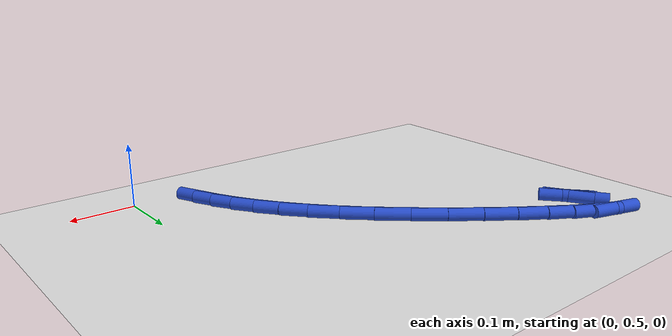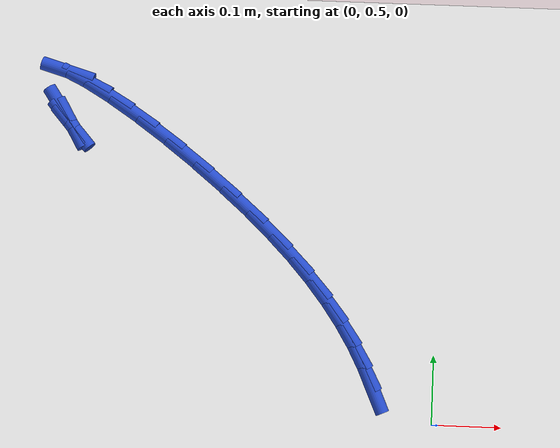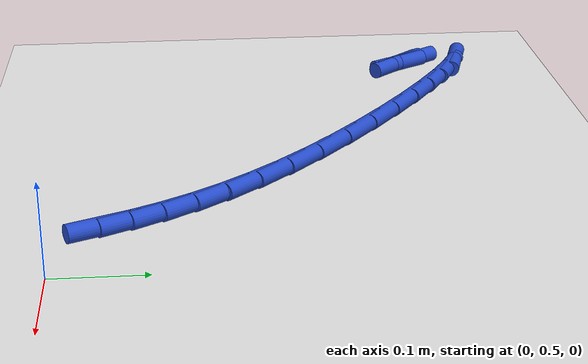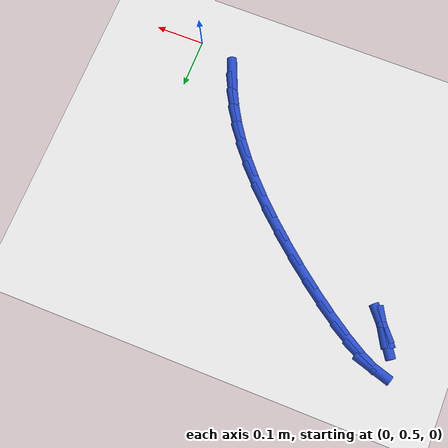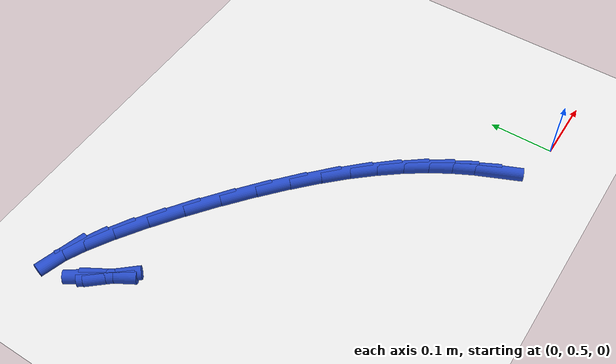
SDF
<sdf version="1.6">
 <world name="default">
  <model name="ground_plane">
   <static>1</static>
   <link name="link">
    <collision name="collision">
     <geometry><plane><normal>0 0 1</normal><size>100 100</size></plane></geometry>
     <surface><friction><ode><mu>100</mu><mu2>50</mu2></ode></friction></surface>
    </collision>
    <visual name="visual">
     <cast_shadows>0</cast_shadows>
     <geometry><plane><normal>0 0 1</normal><size>100 100</size></plane></geometry>
     <material>
      <script><uri>file://media/materials/scripts/gazebo.material</uri><name>Gazebo/WhiteGlow</name></script>
     </material>
    </visual>
   </link>
  </model>
  <model name="line">
   <link name="link_18">
    <pose>-0.08791770634076287 0.551488992806854 0.01 0 1.57 -1.1607090477947983</pose>
    <collision name="collision">
     <geometry><cylinder><radius>0.01</radius><length>0.08</length></cylinder></geometry>
    </collision>
    <visual name="visual">
     <material>
      <script><name>Gazebo/Blue</name><uri>file://media/materials/scripts/gazebo.material</uri></script>
     </material>
     <geometry><cylinder><radius>0.01</radius><length>0.08</length></cylinder></geometry>
    </visual>
   </link>
   <link name="link_19">
    <pose>-0.10077992507986677 0.5810753373186034 0.01 0 1.57 -1.0954111832593871</pose>
    <collision name="collision">
     <geometry><cylinder><radius>0.01</radius><length>0.08</length></cylinder></geometry>
    </collision>
    <visual name="visual">
     <material>
      <script><name>Gazebo/Blue</name><uri>file://media/materials/scripts/gazebo.material</uri></script>
     </material>
     <geometry><cylinder><radius>0.01</radius><length>0.08</length></cylinder></geometry>
    </visual>
   </link>
   <link name="link_20">
    <pose>-0.11626591884931481 0.6111592937344434 0.01 0 1.57 -1.0301002374866681</pose>
    <collision name="collision">
     <geometry><cylinder><radius>0.01</radius><length>0.08</length></cylinder></geometry>
    </collision>
    <visual name="visual">
     <material>
      <script><name>Gazebo/Blue</name><uri>file://media/materials/scripts/gazebo.material</uri></script>
     </material>
     <geometry><cylinder><radius>0.01</radius><length>0.08</length></cylinder></geometry>
    </visual>
   </link>
   <link name="link_21">
    <pose>-0.1346915402481501 0.6418494188201831 0.01 0 1.57 -0.9665598207683193</pose>
    <collision name="collision">
     <geometry><cylinder><radius>0.01</radius><length>0.08</length></cylinder></geometry>
    </collision>
    <visual name="visual">
     <material>
      <script><name>Gazebo/Blue</name><uri>file://media/materials/scripts/gazebo.material</uri></script>
     </material>
     <geometry><cylinder><radius>0.01</radius><length>0.08</length></cylinder></geometry>
    </visual>
   </link>
   <link name="link_22">
    <pose>-0.15637264187541572 0.6732542693416305 0.01 0 1.57 -0.9061651090211164</pose>
    <collision name="collision">
     <geometry><cylinder><radius>0.01</radius><length>0.08</length></cylinder></geometry>
    </collision>
    <visual name="visual">
     <material>
      <script><name>Gazebo/Blue</name><uri>file://media/materials/scripts/gazebo.material</uri></script>
     </material>
     <geometry><cylinder><radius>0.01</radius><length>0.08</length></cylinder></geometry>
    </visual>
   </link>
   <link name="link_23">
    <pose>-0.18162507633015473 0.705482402064594 0.01 0 1.57 -0.8498413605181512</pose>
    <collision name="collision">
     <geometry><cylinder><radius>0.01</radius><length>0.08</length></cylinder></geometry>
    </collision>
    <visual name="visual">
     <material>
      <script><name>Gazebo/Blue</name><uri>file://media/materials/scripts/gazebo.material</uri></script>
     </material>
     <geometry><cylinder><radius>0.01</radius><length>0.08</length></cylinder></geometry>
    </visual>
   </link>
   <link name="link_24">
    <pose>-0.2107646962114102 0.7386423737548817 0.01 0 1.57 -0.7980961942140037</pose>
    <collision name="collision">
     <geometry><cylinder><radius>0.01</radius><length>0.08</length></cylinder></geometry>
    </collision>
    <visual name="visual">
     <material>
      <script><name>Gazebo/Blue</name><uri>file://media/materials/scripts/gazebo.material</uri></script>
     </material>
     <geometry><cylinder><radius>0.01</radius><length>0.08</length></cylinder></geometry>
    </visual>
   </link>
   <link name="link_25">
    <pose>-0.2441073541182251 0.7728427411783025 0.01 0 1.57 -0.7521877125468822</pose>
    <collision name="collision">
     <geometry><cylinder><radius>0.01</radius><length>0.08</length></cylinder></geometry>
    </collision>
    <visual name="visual">
     <material>
      <script><name>Gazebo/Blue</name><uri>file://media/materials/scripts/gazebo.material</uri></script>
     </material>
     <geometry><cylinder><radius>0.01</radius><length>0.08</length></cylinder></geometry>
    </visual>
   </link>
   <link name="link_26">
    <pose>-0.281695706073974 0.8080138305256461 0.01 0 1.57 -0.7146133789067807</pose>
    <collision name="collision">
     <geometry><cylinder><radius>0.01</radius><length>0.08</length></cylinder></geometry>
    </collision>
    <visual name="visual">
     <material>
      <script><name>Gazebo/Blue</name><uri>file://media/materials/scripts/gazebo.material</uri></script>
     </material>
     <geometry><cylinder><radius>0.01</radius><length>0.08</length></cylinder></geometry>
    </visual>
   </link>
   <link name="link_27">
    <pose>-0.3223672091477742 0.8432997088550509 0.01 0 1.57 -0.6822002102609821</pose>
    <collision name="collision">
     <geometry><cylinder><radius>0.01</radius><length>0.08</length></cylinder></geometry>
    </collision>
    <visual name="visual">
     <material>
      <script><name>Gazebo/Blue</name><uri>file://media/materials/scripts/gazebo.material</uri></script>
     </material>
     <geometry><cylinder><radius>0.01</radius><length>0.08</length></cylinder></geometry>
    </visual>
   </link>
   <link name="link_28">
    <pose>-0.3646270855249644 0.8776276966778425 0.01 0 1.57 -0.651496474279758</pose>
    <collision name="collision">
     <geometry><cylinder><radius>0.01</radius><length>0.08</length></cylinder></geometry>
    </collision>
    <visual name="visual">
     <material>
      <script><name>Gazebo/Blue</name><uri>file://media/materials/scripts/gazebo.material</uri></script>
     </material>
     <geometry><cylinder><radius>0.01</radius><length>0.08</length></cylinder></geometry>
    </visual>
   </link>
   <link name="link_29">
    <pose>-0.4069805469184418 0.9099251076732369 0.01 0 1.57 -0.619319708851095</pose>
    <collision name="collision">
     <geometry><cylinder><radius>0.01</radius><length>0.08</length></cylinder></geometry>
    </collision>
    <visual name="visual">
     <material>
      <script><name>Gazebo/Blue</name><uri>file://media/materials/scripts/gazebo.material</uri></script>
     </material>
     <geometry><cylinder><radius>0.01</radius><length>0.08</length></cylinder></geometry>
    </visual>
   </link>
   <link name="link_30">
    <pose>-0.4479328050411033 0.939119255520449 0.01 0 1.57 -0.5815599124522028</pose>
    <collision name="collision">
     <geometry><cylinder><radius>0.01</radius><length>0.08</length></cylinder></geometry>
    </collision>
    <visual name="visual">
     <material>
      <script><name>Gazebo/Blue</name><uri>file://media/materials/scripts/gazebo.material</uri></script>
     </material>
     <geometry><cylinder><radius>0.01</radius><length>0.08</length></cylinder></geometry>
    </visual>
   </link>
   <link name="link_31">
    <pose>-0.4859890716058458 0.9641374538986937 0.01 0 1.57 -0.530980825086728</pose>
    <collision name="collision">
     <geometry><cylinder><radius>0.01</radius><length>0.08</length></cylinder></geometry>
    </collision>
    <visual name="visual">
     <material>
      <script><name>Gazebo/Blue</name><uri>file://media/materials/scripts/gazebo.material</uri></script>
     </material>
     <geometry><cylinder><radius>0.01</radius><length>0.08</length></cylinder></geometry>
    </visual>
   </link>
   <link name="link_32">
    <pose>-0.5196545583255666 0.9839070164871867 0.01 0 1.57 -0.4508463630549518</pose>
    <collision name="collision">
     <geometry><cylinder><radius>0.01</radius><length>0.08</length></cylinder></geometry>
    </collision>
    <visual name="visual">
     <material>
      <script><name>Gazebo/Blue</name><uri>file://media/materials/scripts/gazebo.material</uri></script>
     </material>
     <geometry><cylinder><radius>0.01</radius><length>0.08</length></cylinder></geometry>
    </visual>
   </link>
   <link name="link_33">
    <pose>-0.5474344769131626 0.9973552569651433 0.01 0 1.57 -0.2885023062760594</pose>
    <collision name="collision">
     <geometry><cylinder><radius>0.01</radius><length>0.08</length></cylinder></geometry>
    </collision>
    <visual name="visual">
     <material>
      <script><name>Gazebo/Blue</name><uri>file://media/materials/scripts/gazebo.material</uri></script>
     </material>
     <geometry><cylinder><radius>0.01</radius><length>0.08</length></cylinder></geometry>
    </visual>
   </link>
   <link name="link_38">
    <pose>-0.551454894785037 0.9384614285880154 0.01 0 1.57 -0.9747282628831557</pose>
    <collision name="collision">
     <geometry><cylinder><radius>0.01</radius><length>0.08</length></cylinder></geometry>
    </collision>
    <visual name="visual">
     <material>
      <script><name>Gazebo/Blue</name><uri>file://media/materials/scripts/gazebo.material</uri></script>
     </material>
     <geometry><cylinder><radius>0.01</radius><length>0.08</length></cylinder></geometry>
    </visual>
   </link>
   <link name="link_39">
    <pose>-0.5390990317790039 0.9202476504994181 0.01 0 1.57 -1.0492456244938666</pose>
    <collision name="collision">
     <geometry><cylinder><radius>0.01</radius><length>0.08</length></cylinder></geometry>
    </collision>
    <visual name="visual">
     <material>
      <script><name>Gazebo/Blue</name><uri>file://media/materials/scripts/gazebo.material</uri></script>
     </material>
     <geometry><cylinder><radius>0.01</radius><length>0.08</length></cylinder></geometry>
    </visual>
   </link>
   <link name="link_40">
    <pose>-0.5362549353686903 0.9152981483639404 0.01 0 1.57 -0.857212973098952</pose>
    <collision name="collision">
     <geometry><cylinder><radius>0.01</radius><length>0.08</length></cylinder></geometry>
    </collision>
    <visual name="visual">
     <material>
      <script><name>Gazebo/Blue</name><uri>file://media/materials/scripts/gazebo.material</uri></script>
     </material>
     <geometry><cylinder><radius>0.01</radius><length>0.08</length></cylinder></geometry>
    </visual>
   </link>
   <link name="link_41">
    <pose>-0.5419561016126783 0.9218831644203921 0.01 0 1.57 -0.8898527232242053</pose>
    <collision name="collision">
     <geometry><cylinder><radius>0.01</radius><length>0.08</length></cylinder></geometry>
    </collision>
    <visual name="visual">
     <material>
      <script><name>Gazebo/Blue</name><uri>file://media/materials/scripts/gazebo.material</uri></script>
     </material>
     <geometry><cylinder><radius>0.01</radius><length>0.08</length></cylinder></geometry>
    </visual>
   </link>
  </model>
 </world>
</sdf>
